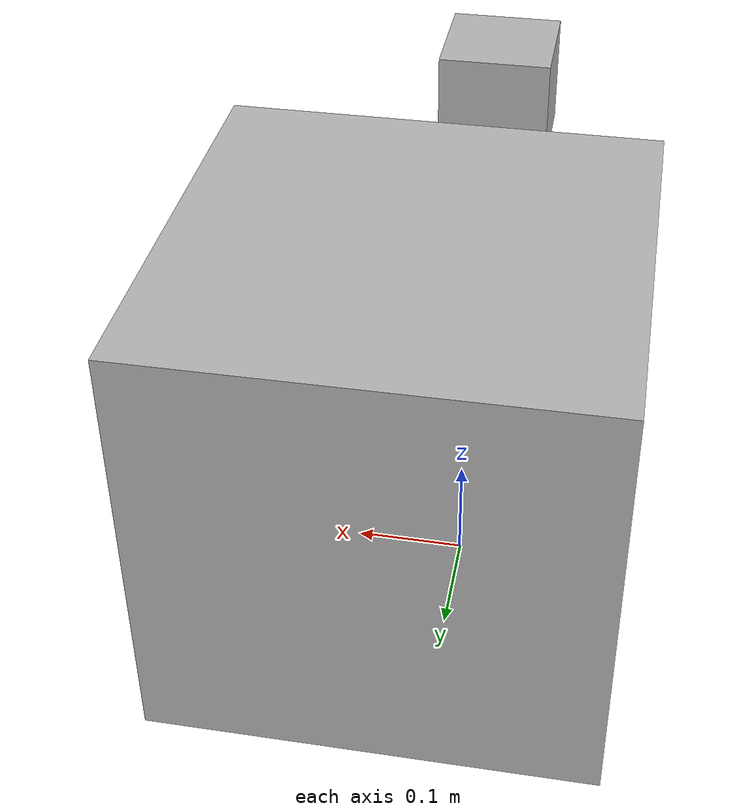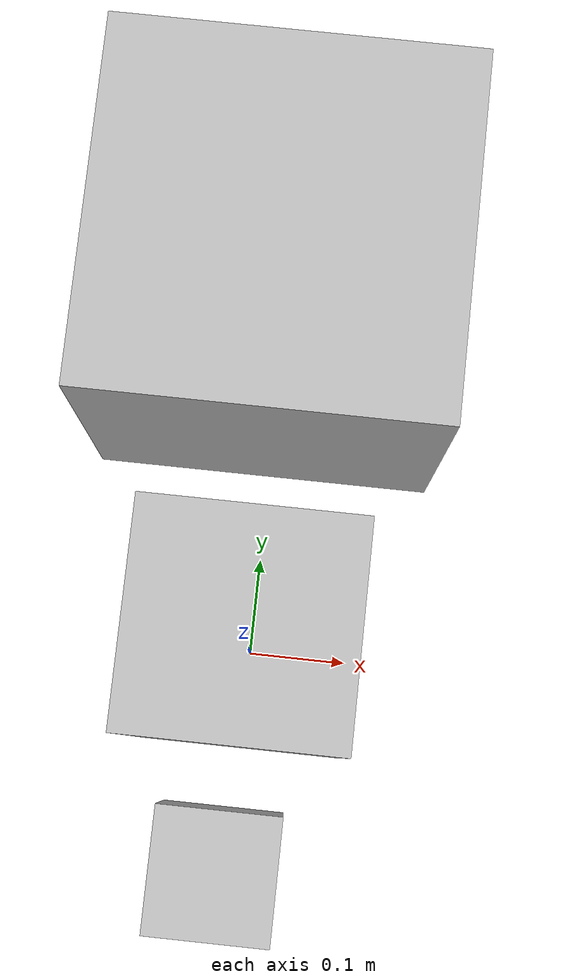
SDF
<?xml version='1.0' encoding='utf-8'?>
<sdf version="1.7">
  <model name="joint_gearbox">
    <link name="link_1">
      <pose>0 0 0.2 0 0 0</pose>
      <visual name="link_1_visual">
        <geometry>
          <box>
            <size>0.2 0.2 0.4</size>
          </box>
        </geometry>
      </visual>
      <collision name="link_1_collision">
        <geometry>
          <box>
            <size>0.2 0.2 0.4</size>
          </box>
        </geometry>
      </collision>
      <inertial>
        <mass>12.3</mass>
        <inertia>
          <ixx>0.205</ixx>
          <ixy>0</ixy>
          <ixz>0</ixz>
          <iyy>0.205</iyy>
          <iyz>0</iyz>
          <izz>0.082</izz>
        </inertia>
      </inertial>
    </link>
    <link name="link_2">
      <pose>0 -0.2 0.4 0 0 0</pose>
      <visual name="link_2_visual">
        <geometry>
          <box>
            <size>0.1 0.1 0.1</size>
          </box>
        </geometry>
      </visual>
      <collision name="link_2_collision">
        <geometry>
          <box>
            <size>0.1 0.1 0.1</size>
          </box>
        </geometry>
      </collision>
      <inertial>
        <mass>1.23</mass>
        <inertia>
          <ixx>0.00205</ixx>
          <ixy>0</ixy>
          <ixz>0</ixz>
          <iyy>0.00205</iyy>
          <iyz>0</iyz>
          <izz>0.00205</izz>
        </inertia>
      </inertial>
    </link>
    <link name="link_3">
      <pose>0 0.3 0.4 0 0 0</pose>
      <visual name="link_3_visual">
        <geometry>
          <box>
            <size>0.3 0.3 0.3</size>
          </box>
        </geometry>
      </visual>
      <collision name="link_3_collision">
        <geometry>
          <box>
            <size>0.3 0.3 0.3</size>
          </box>
        </geometry>
      </collision>
      <inertial>
        <mass>1.23</mass>
        <inertia>
          <ixx>0.01845</ixx>
          <ixy>0</ixy>
          <ixz>0</ixz>
          <iyy>0.01845</iyy>
          <iyz>0</iyz>
          <izz>0.01845</izz>
        </inertia>
      </inertial>
    </link>

    <joint name="joint_revolute_1" type="revolute">
      <parent>link_1</parent>
      <child>link_2</child>
      <axis>
        <xyz expressed_in="__model__">0 1 0</xyz>
      </axis>
    </joint>
    <joint name="joint_revolute_2" type="revolute">
      <parent>link_1</parent>
      <child>link_3</child>
      <axis>
        <xyz expressed_in="__model__">0 1 0</xyz>
      </axis>
    </joint>

    <joint name="joint_gearbox" type="gearbox">
      <parent>link_3</parent>
      <child>link_2</child>
      <gearbox_ratio>-27</gearbox_ratio>
      <gearbox_reference_body>link_1</gearbox_reference_body>
      <axis>
        <xyz expressed_in="__model__">0 1 0</xyz>
      </axis>
      <axis2>
        <xyz expressed_in="__model__">0 1 0</xyz>
      </axis2>
    </joint>
  </model>
</sdf>
